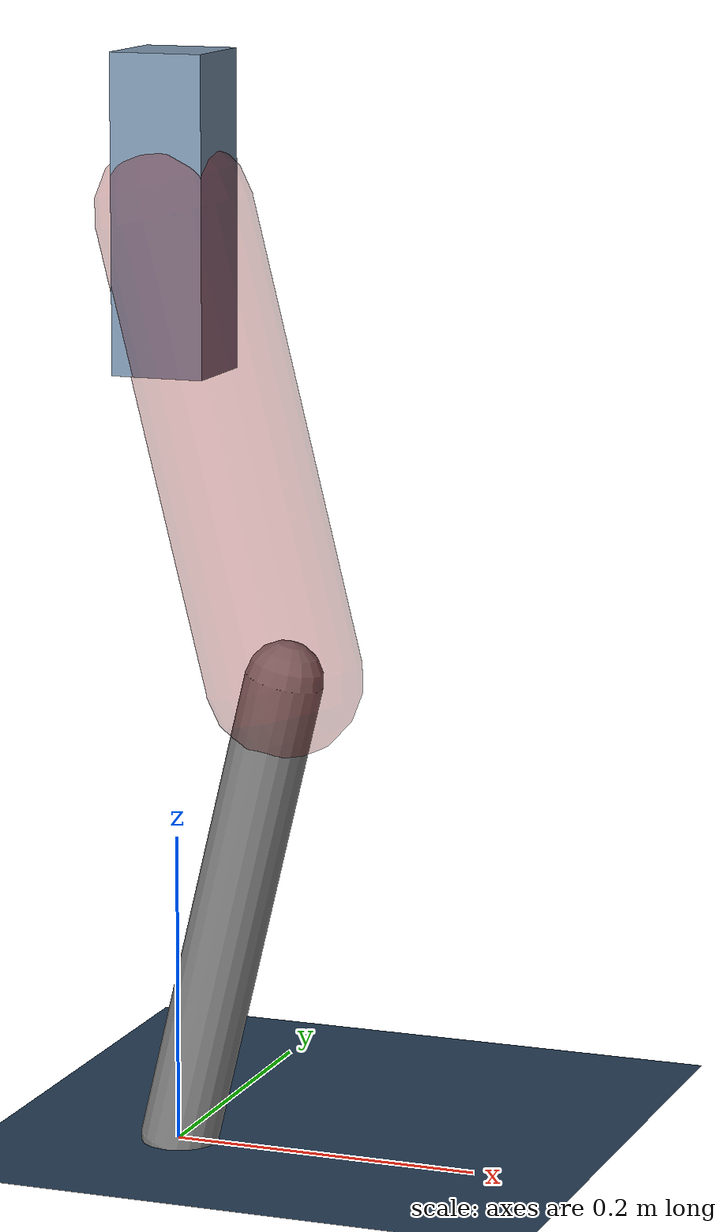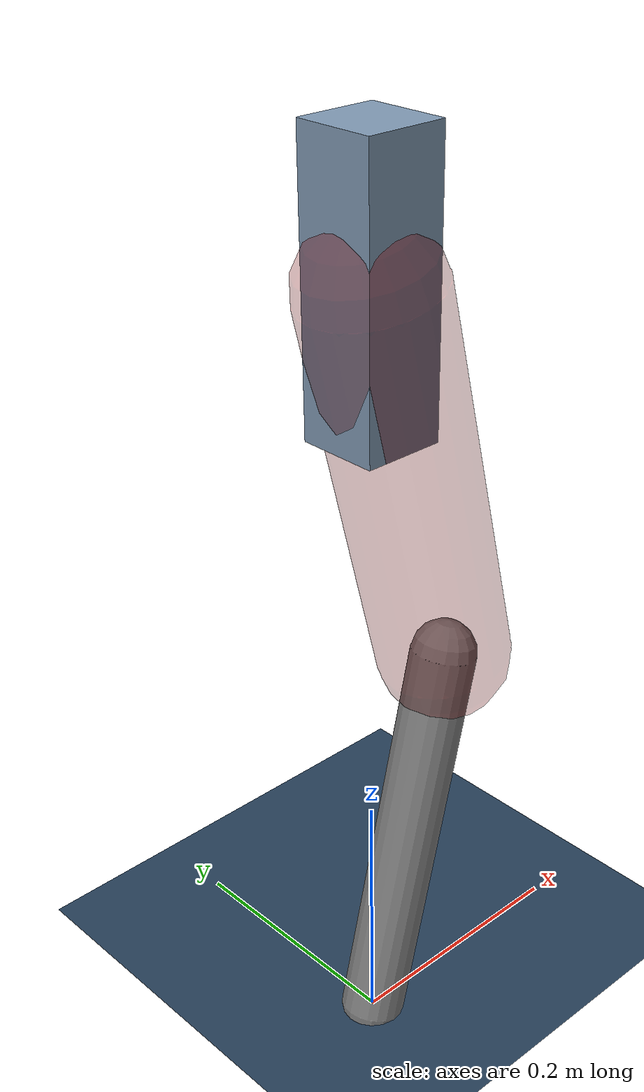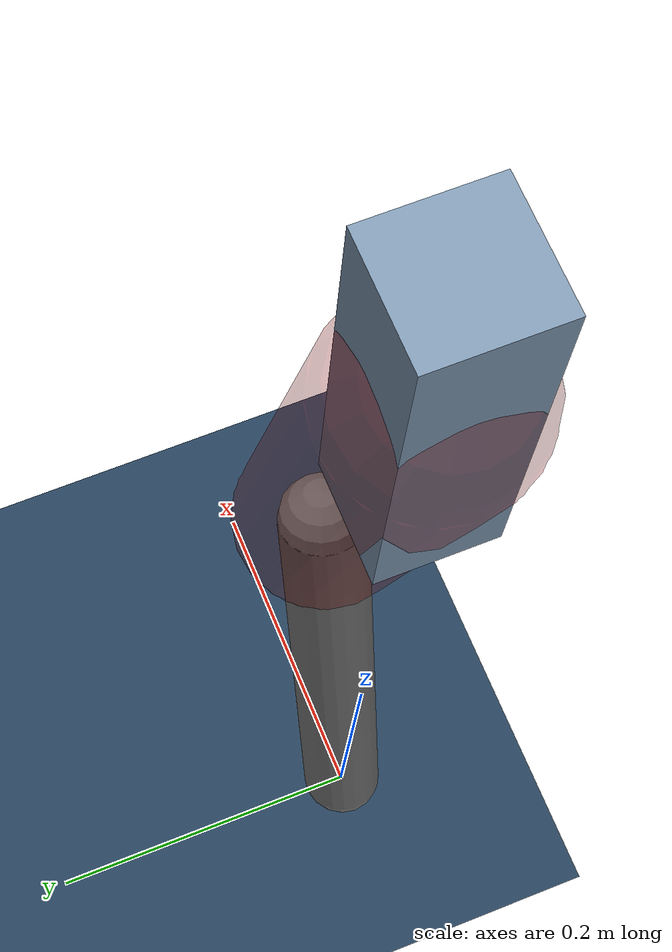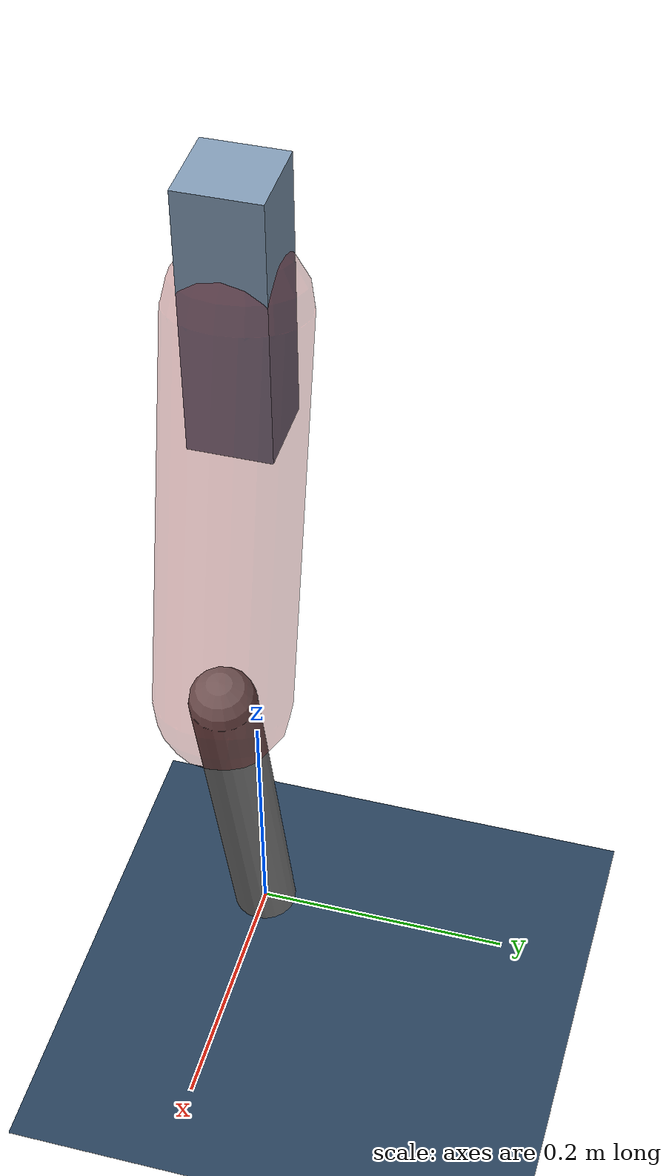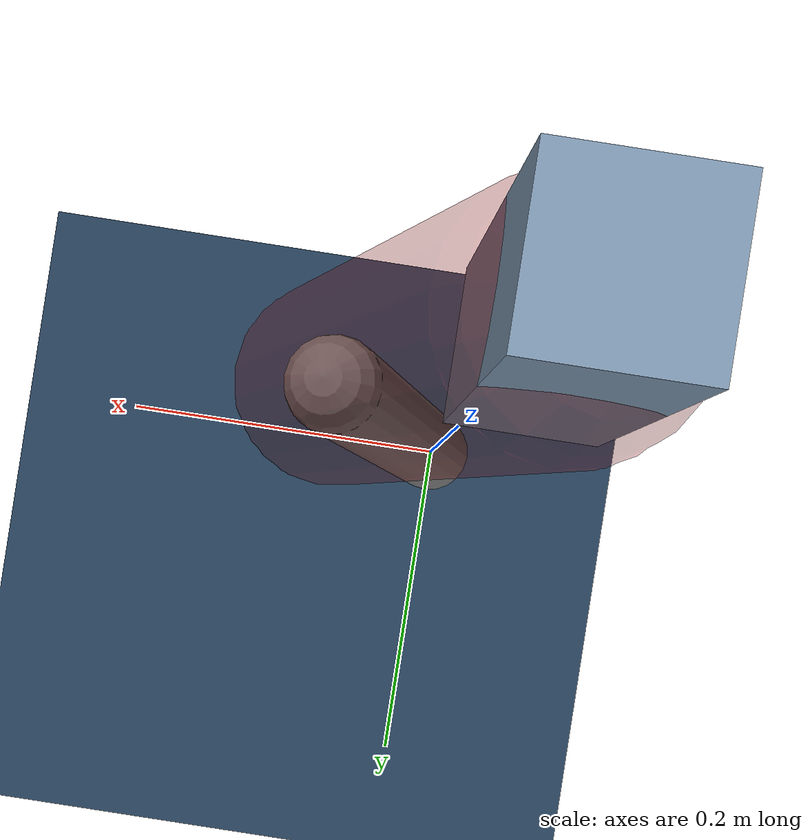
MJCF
<mujoco model="Hopper2D">
	<compiler inertiafromgeom="true" angle="radian" />
	<option timestep="0.001" integrator="implicit" cone="elliptic" solver="Newton" tolerance="1e-10" />

	<default>
		<geom contype="1" conaffinity="1" condim="3" friction="2 0.005 0.0001" solref="0.005 1" />
		<joint limited="true" damping="0.1" />
	</default>

	<asset>
		<texture name="skybox" type="skybox" builtin="gradient" rgb1=".4 .6 .8" rgb2="0 0 0" width="800" height="800" />
		<texture name="grid" type="2d" builtin="checker" rgb1=".1 .2 .3" rgb2=".2 .3 .4" width="300" height="300" mark="edge" markrgb=".2 .3 .4" />
		<material name="ground" texture="grid" texrepeat="1 1" texuniform="true" reflectance="0.1" />
		<material name="leg" rgba="0.5 0.6 0.7 1" />
	</asset>

	<worldbody>

		<geom name="floor" type="plane" size="5 5 0.25" material="ground" />

		<light directional="false" diffuse="0.8 0.8 0.8" specular="0.3 0.3 0.3" pos="0 0 2" dir="0 0 -1" />
		<light mode="targetbodycom" target="base" directional="false" diffuse="0.8 0.8 0.8" specular="0.3 0.3 0.3" pos="0 0 2" dir="0 0 -1" />

		<camera name="fixed" pos="0 -2 1" xyaxes="1 0 0 0 0 1" />
		<camera name="tracking" mode="trackcom" pos="0 -3 1" />

		<body name="root" pos="0 0 0.5995119065907983">
			<joint name="slide_x" type="slide" axis="1 0 0" range="-100 100" />
			<joint name="slide_z" type="slide" axis="0 0 1" range="0 10" />

			<body name="base" pos="0 0 0">
				<geom name="torso" type="box" size="0.03 0.03 0.1" mass="1.508" material="leg" />

				<body name="link1" pos="0 0 0" euler="0 1.3254542925731116 0">
					<joint type="hinge" axis="0 -1 0" pos="0 0 0" name="hinge1" limited="true" range="-3.14 3.14" stiffness="0" damping="0.1" />
					<geom name="thigh" type="capsule" fromto="0 0 0 0.3000904150837091 0 0" size="0.05" rgba="0.5 0 0 0.3" mass="0.9889441207260146" />

					<body name="link2" pos="0.3000904150837091 0 0" euler="0 0.4774212605082215 0">
						<joint type="hinge" axis="0 -1 0" pos="0 0 0" name="hinge2" limited="true" range="-3.14 3.14" stiffness="0" damping="0.1" />
						<geom name="shank" type="capsule" fromto="0 0 0 0.31690401727923373 0 0" size="0.025" mass="0.497123213823387" />

					</body>
				</body>
			</body>
		</body>
	</worldbody>

	<actuator>
		<motor name="torque1" joint="hinge1" ctrlrange="-30.19023018134407 30.19023018134407" ctrllimited="true" gear="1" />
		<motor name="torque2" joint="hinge2" ctrlrange="-12.81056506806535 12.81056506806535" ctrllimited="true" gear="1" />
	</actuator>
</mujoco>
